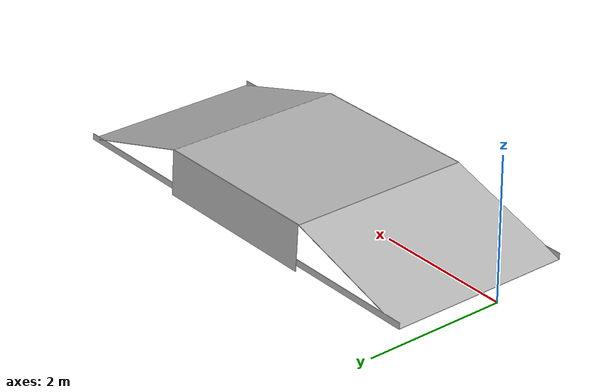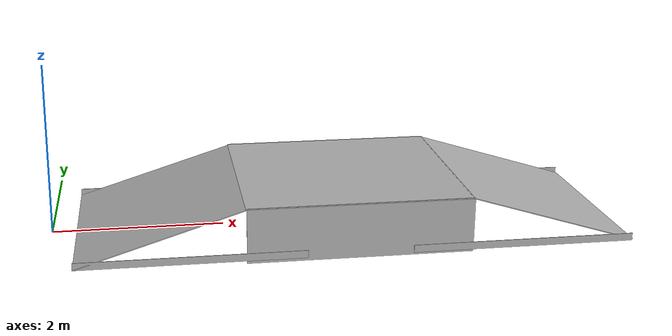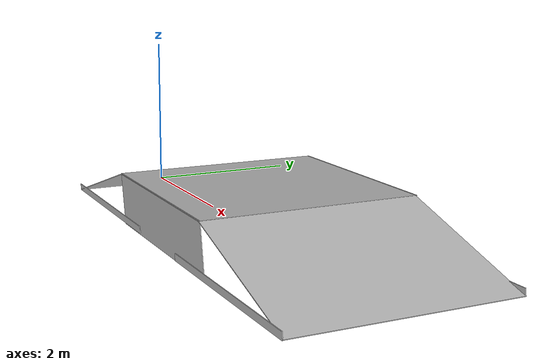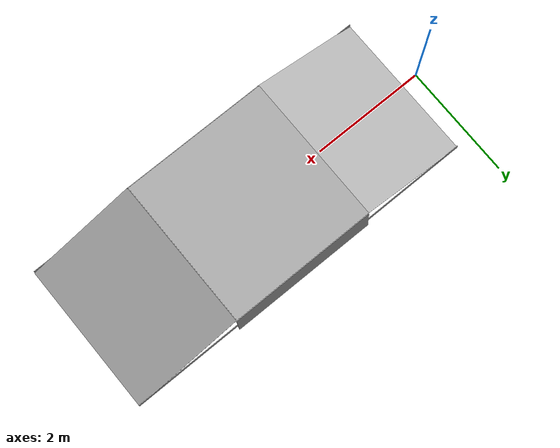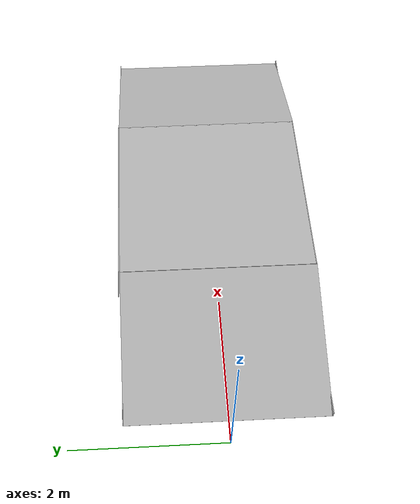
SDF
<?xml version='1.0'?>
<sdf version='1.7'>
  <model name='test1'>
    <link name='slope_up'>
      <pose>1.23518 0.004535 0.301113 0 -0.3 0</pose>
      <self_collide>0</self_collide>
      <kinematic>0</kinematic>
      <gravity>1</gravity>
      <enable_wind>0</enable_wind>
      <inertial>
        <inertia>
          <ixx>0</ixx>
          <ixy>0</ixy>
          <ixz>0</ixz>
          <iyy>0</iyy>
          <iyz>0</iyz>
          <izz>0</izz>
        </inertia>
        <mass>0</mass>
        <pose>0 0 0 0 -0 0</pose>
      </inertial>
      <visual name='visual'>
        <geometry>
          <box>
            <size>2 2.6318 0.01</size>
          </box>
        </geometry>
        <material>
          <shader type='pixel'/>
        </material>
        <pose>0 0 0 0 -0 0</pose>
        <transparency>0</transparency>
        <cast_shadows>1</cast_shadows>
      </visual>
      <collision name='collision'>
        <laser_retro>0</laser_retro>
        <max_contacts>10</max_contacts>
        <pose>0 0 0 0 -0 0</pose>
        <geometry>
          <box>
            <size>2 2.6318 0.01</size>
          </box>
        </geometry>
        <surface>
          <friction>
            <ode>
              <mu>1</mu>
              <mu2>1</mu2>
              <fdir1>0 0 0</fdir1>
              <slip1>0</slip1>
              <slip2>0</slip2>
            </ode>
            <torsional>
              <coefficient>1</coefficient>
              <patch_radius>0</patch_radius>
              <surface_radius>0</surface_radius>
              <use_patch_radius>1</use_patch_radius>
              <ode>
                <slip>0</slip>
              </ode>
            </torsional>
          </friction>
          <bounce>
            <restitution_coefficient>0</restitution_coefficient>
            <threshold>1e+06</threshold>
          </bounce>
          <contact>
            <collide_without_contact>0</collide_without_contact>
            <collide_without_contact_bitmask>1</collide_without_contact_bitmask>
            <collide_bitmask>1</collide_bitmask>
            <ode>
              <soft_cfm>0</soft_cfm>
              <soft_erp>0.2</soft_erp>
              <kp>1e+13</kp>
              <kd>1</kd>
              <max_vel>0.01</max_vel>
              <min_depth>0</min_depth>
            </ode>
            <bullet>
              <split_impulse>1</split_impulse>
              <split_impulse_penetration_threshold>-0.01</split_impulse_penetration_threshold>
              <soft_cfm>0</soft_cfm>
              <soft_erp>0.2</soft_erp>
              <kp>1e+13</kp>
              <kd>1</kd>
            </bullet>
          </contact>
        </surface>
      </collision>
    </link>
    <link name='slope_down'>
      <pose>5.69212 0.005402 0.304187 0 0.3 0</pose>
      <self_collide>0</self_collide>
      <kinematic>0</kinematic>
      <gravity>1</gravity>
      <enable_wind>0</enable_wind>
      <inertial>
        <inertia>
          <ixx>0</ixx>
          <ixy>0</ixy>
          <ixz>0</ixz>
          <iyy>0</iyy>
          <iyz>0</iyz>
          <izz>0</izz>
        </inertia>
        <mass>0</mass>
        <pose>0 0 0 0 -0 0</pose>
      </inertial>
      <visual name='visual'>
        <geometry>
          <box>
            <size>2 2.63129 0.01</size>
          </box>
        </geometry>
        <material>
          <shader type='pixel'/>
        </material>
        <pose>0 0 0 0 -0 0</pose>
        <transparency>0</transparency>
        <cast_shadows>1</cast_shadows>
      </visual>
      <collision name='collision'>
        <laser_retro>0</laser_retro>
        <max_contacts>10</max_contacts>
        <pose>0 0 0 0 -0 0</pose>
        <geometry>
          <box>
            <size>2 2.63129 0.01</size>
          </box>
        </geometry>
        <surface>
          <friction>
            <ode>
              <mu>1</mu>
              <mu2>1</mu2>
              <fdir1>0 0 0</fdir1>
              <slip1>0</slip1>
              <slip2>0</slip2>
            </ode>
            <torsional>
              <coefficient>1</coefficient>
              <patch_radius>0</patch_radius>
              <surface_radius>0</surface_radius>
              <use_patch_radius>1</use_patch_radius>
              <ode>
                <slip>0</slip>
              </ode>
            </torsional>
          </friction>
          <bounce>
            <restitution_coefficient>0</restitution_coefficient>
            <threshold>1e+06</threshold>
          </bounce>
          <contact>
            <collide_without_contact>0</collide_without_contact>
            <collide_without_contact_bitmask>1</collide_without_contact_bitmask>
            <collide_bitmask>1</collide_bitmask>
            <ode>
              <soft_cfm>0</soft_cfm>
              <soft_erp>0.2</soft_erp>
              <kp>1e+13</kp>
              <kd>1</kd>
              <max_vel>0.01</max_vel>
              <min_depth>0</min_depth>
            </ode>
            <bullet>
              <split_impulse>1</split_impulse>
              <split_impulse_penetration_threshold>-0.01</split_impulse_penetration_threshold>
              <soft_cfm>0</soft_cfm>
              <soft_erp>0.2</soft_erp>
              <kp>1e+13</kp>
              <kd>1</kd>
            </bullet>
          </contact>
        </surface>
      </collision>
    </link>
    <link name='slope_zero'>
      <pose>3.45792 0.006188 0.598964 0 -0 0</pose>
      <self_collide>0</self_collide>
      <kinematic>0</kinematic>
      <gravity>1</gravity>
      <enable_wind>0</enable_wind>
      <inertial>
        <inertia>
          <ixx>0</ixx>
          <ixy>0</ixy>
          <ixz>0</ixz>
          <iyy>0</iyy>
          <iyz>0</iyz>
          <izz>0</izz>
        </inertia>
        <mass>0</mass>
        <pose>0 0 0 0 -0 0</pose>
      </inertial>
      <visual name='visual'>
        <geometry>
          <box>
            <size>2.57788 2.6263 0.01</size>
          </box>
        </geometry>
        <material>
          <shader type='pixel'/>
        </material>
        <pose>0 0 0 0 -0 0</pose>
        <transparency>0</transparency>
        <cast_shadows>1</cast_shadows>
      </visual>
      <collision name='collision'>
        <laser_retro>0</laser_retro>
        <max_contacts>10</max_contacts>
        <pose>0 0 0 0 -0 0</pose>
        <geometry>
          <box>
            <size>2.57788 2.6263 0.01</size>
          </box>
        </geometry>
        <surface>
          <friction>
            <ode>
              <mu>1</mu>
              <mu2>1</mu2>
              <fdir1>0 0 0</fdir1>
              <slip1>0</slip1>
              <slip2>0</slip2>
            </ode>
            <torsional>
              <coefficient>1</coefficient>
              <patch_radius>0</patch_radius>
              <surface_radius>0</surface_radius>
              <use_patch_radius>1</use_patch_radius>
              <ode>
                <slip>0</slip>
              </ode>
            </torsional>
          </friction>
          <bounce>
            <restitution_coefficient>0</restitution_coefficient>
            <threshold>1e+06</threshold>
          </bounce>
          <contact>
            <collide_without_contact>0</collide_without_contact>
            <collide_without_contact_bitmask>1</collide_without_contact_bitmask>
            <collide_bitmask>1</collide_bitmask>
            <ode>
              <soft_cfm>0</soft_cfm>
              <soft_erp>0.2</soft_erp>
              <kp>1e+13</kp>
              <kd>1</kd>
              <max_vel>0.01</max_vel>
              <min_depth>0</min_depth>
            </ode>
            <bullet>
              <split_impulse>1</split_impulse>
              <split_impulse_penetration_threshold>-0.01</split_impulse_penetration_threshold>
              <soft_cfm>0</soft_cfm>
              <soft_erp>0.2</soft_erp>
              <kp>1e+13</kp>
              <kd>1</kd>
            </bullet>
          </contact>
        </surface>
      </collision>
    </link>
    <link name='slope_zero_clone'>
      <pose>3.46487 1.35015 0.281576 -1.50451 0 0</pose>
      <self_collide>0</self_collide>
      <kinematic>0</kinematic>
      <gravity>1</gravity>
      <enable_wind>0</enable_wind>
      <inertial>
        <inertia>
          <ixx>0</ixx>
          <ixy>0</ixy>
          <ixz>0</ixz>
          <iyy>0</iyy>
          <iyz>0</iyz>
          <izz>0</izz>
        </inertia>
        <mass>0</mass>
        <pose>0 0 0 0 -0 0</pose>
      </inertial>
      <visual name='visual'>
        <geometry>
          <box>
            <size>2.57788 0.651532 0.01</size>
          </box>
        </geometry>
        <material>
          <shader type='pixel'/>
        </material>
        <pose>0 0 0 0 -0 0</pose>
        <transparency>0</transparency>
        <cast_shadows>1</cast_shadows>
      </visual>
      <collision name='collision'>
        <laser_retro>0</laser_retro>
        <max_contacts>10</max_contacts>
        <pose>0 0 0 0 -0 0</pose>
        <geometry>
          <box>
            <size>2.57788 0.651532 0.01</size>
          </box>
        </geometry>
        <surface>
          <friction>
            <ode>
              <mu>1</mu>
              <mu2>1</mu2>
              <fdir1>0 0 0</fdir1>
              <slip1>0</slip1>
              <slip2>0</slip2>
            </ode>
            <torsional>
              <coefficient>1</coefficient>
              <patch_radius>0</patch_radius>
              <surface_radius>0</surface_radius>
              <use_patch_radius>1</use_patch_radius>
              <ode>
                <slip>0</slip>
              </ode>
            </torsional>
          </friction>
          <bounce>
            <restitution_coefficient>0</restitution_coefficient>
            <threshold>1e+06</threshold>
          </bounce>
          <contact>
            <collide_without_contact>0</collide_without_contact>
            <collide_without_contact_bitmask>1</collide_without_contact_bitmask>
            <collide_bitmask>1</collide_bitmask>
            <ode>
              <soft_cfm>0</soft_cfm>
              <soft_erp>0.2</soft_erp>
              <kp>1e+13</kp>
              <kd>1</kd>
              <max_vel>0.01</max_vel>
              <min_depth>0</min_depth>
            </ode>
            <bullet>
              <split_impulse>1</split_impulse>
              <split_impulse_penetration_threshold>-0.01</split_impulse_penetration_threshold>
              <soft_cfm>0</soft_cfm>
              <soft_erp>0.2</soft_erp>
              <kp>1e+13</kp>
              <kd>1</kd>
            </bullet>
          </contact>
        </surface>
      </collision>
    </link>
    <link name='slope_zero_clone_clone'>
      <pose>3.46816 -1.28045 0.281576 -1.50451 0 0</pose>
      <self_collide>0</self_collide>
      <kinematic>0</kinematic>
      <gravity>1</gravity>
      <enable_wind>0</enable_wind>
      <inertial>
        <inertia>
          <ixx>0</ixx>
          <ixy>0</ixy>
          <ixz>0</ixz>
          <iyy>0</iyy>
          <iyz>0</iyz>
          <izz>0</izz>
        </inertia>
        <mass>0</mass>
        <pose>0 0 0 0 -0 0</pose>
      </inertial>
      <visual name='visual'>
        <geometry>
          <box>
            <size>2.57788 0.651532 0.01</size>
          </box>
        </geometry>
        <material>
          <shader type='pixel'/>
        </material>
        <pose>0 0 0 0 -0 0</pose>
        <transparency>0</transparency>
        <cast_shadows>1</cast_shadows>
      </visual>
      <collision name='collision'>
        <laser_retro>0</laser_retro>
        <max_contacts>10</max_contacts>
        <pose>0 0 0 0 -0 0</pose>
        <geometry>
          <box>
            <size>2.57788 0.651532 0.01</size>
          </box>
        </geometry>
        <surface>
          <friction>
            <ode>
              <mu>1</mu>
              <mu2>1</mu2>
              <fdir1>0 0 0</fdir1>
              <slip1>0</slip1>
              <slip2>0</slip2>
            </ode>
            <torsional>
              <coefficient>1</coefficient>
              <patch_radius>0</patch_radius>
              <surface_radius>0</surface_radius>
              <use_patch_radius>1</use_patch_radius>
              <ode>
                <slip>0</slip>
              </ode>
            </torsional>
          </friction>
          <bounce>
            <restitution_coefficient>0</restitution_coefficient>
            <threshold>1e+06</threshold>
          </bounce>
          <contact>
            <collide_without_contact>0</collide_without_contact>
            <collide_without_contact_bitmask>1</collide_without_contact_bitmask>
            <collide_bitmask>1</collide_bitmask>
            <ode>
              <soft_cfm>0</soft_cfm>
              <soft_erp>0.2</soft_erp>
              <kp>1e+13</kp>
              <kd>1</kd>
              <max_vel>0.01</max_vel>
              <min_depth>0</min_depth>
            </ode>
            <bullet>
              <split_impulse>1</split_impulse>
              <split_impulse_penetration_threshold>-0.01</split_impulse_penetration_threshold>
              <soft_cfm>0</soft_cfm>
              <soft_erp>0.2</soft_erp>
              <kp>1e+13</kp>
              <kd>1</kd>
            </bullet>
          </contact>
        </surface>
      </collision>
    </link>
    <link name='slope_zero_clone_clone_clone'>
      <pose>1.56942 -1.30534 0.047319 -1.50451 0 0</pose>
      <self_collide>0</self_collide>
      <kinematic>0</kinematic>
      <gravity>1</gravity>
      <enable_wind>0</enable_wind>
      <inertial>
        <inertia>
          <ixx>0</ixx>
          <ixy>0</ixy>
          <ixz>0</ixz>
          <iyy>0</iyy>
          <iyz>0</iyz>
          <izz>0</izz>
        </inertia>
        <mass>0</mass>
        <pose>0 0 0 0 -0 0</pose>
      </inertial>
      <visual name='visual'>
        <geometry>
          <box>
            <size>2.57788 0.088007 0.01</size>
          </box>
        </geometry>
        <material>
          <shader type='pixel'/>
        </material>
        <pose>0 0 0 0 -0 0</pose>
        <transparency>0</transparency>
        <cast_shadows>1</cast_shadows>
      </visual>
      <collision name='collision'>
        <laser_retro>0</laser_retro>
        <max_contacts>10</max_contacts>
        <pose>0 0 0 0 -0 0</pose>
        <geometry>
          <box>
            <size>2.57788 0.088007 0.01</size>
          </box>
        </geometry>
        <surface>
          <friction>
            <ode>
              <mu>1</mu>
              <mu2>1</mu2>
              <fdir1>0 0 0</fdir1>
              <slip1>0</slip1>
              <slip2>0</slip2>
            </ode>
            <torsional>
              <coefficient>1</coefficient>
              <patch_radius>0</patch_radius>
              <surface_radius>0</surface_radius>
              <use_patch_radius>1</use_patch_radius>
              <ode>
                <slip>0</slip>
              </ode>
            </torsional>
          </friction>
          <bounce>
            <restitution_coefficient>0</restitution_coefficient>
            <threshold>1e+06</threshold>
          </bounce>
          <contact>
            <collide_without_contact>0</collide_without_contact>
            <collide_without_contact_bitmask>1</collide_without_contact_bitmask>
            <collide_bitmask>1</collide_bitmask>
            <ode>
              <soft_cfm>0</soft_cfm>
              <soft_erp>0.2</soft_erp>
              <kp>1e+13</kp>
              <kd>1</kd>
              <max_vel>0.01</max_vel>
              <min_depth>0</min_depth>
            </ode>
            <bullet>
              <split_impulse>1</split_impulse>
              <split_impulse_penetration_threshold>-0.01</split_impulse_penetration_threshold>
              <soft_cfm>0</soft_cfm>
              <soft_erp>0.2</soft_erp>
              <kp>1e+13</kp>
              <kd>1</kd>
            </bullet>
          </contact>
        </surface>
      </collision>
    </link>
    <link name='slope_zero_clone_clone_clone_clone'>
      <pose>1.56969 1.31882 0.047319 -1.50451 0 0</pose>
      <self_collide>0</self_collide>
      <kinematic>0</kinematic>
      <gravity>1</gravity>
      <enable_wind>0</enable_wind>
      <inertial>
        <inertia>
          <ixx>0</ixx>
          <ixy>0</ixy>
          <ixz>0</ixz>
          <iyy>0</iyy>
          <iyz>0</iyz>
          <izz>0</izz>
        </inertia>
        <mass>0</mass>
        <pose>0 0 0 0 -0 0</pose>
      </inertial>
      <visual name='visual'>
        <geometry>
          <box>
            <size>2.57788 0.088007 0.01</size>
          </box>
        </geometry>
        <material>
          <shader type='pixel'/>
        </material>
        <pose>0 0 0 0 -0 0</pose>
        <transparency>0</transparency>
        <cast_shadows>1</cast_shadows>
      </visual>
      <collision name='collision'>
        <laser_retro>0</laser_retro>
        <max_contacts>10</max_contacts>
        <pose>0 0 0 0 -0 0</pose>
        <geometry>
          <box>
            <size>2.57788 0.088007 0.01</size>
          </box>
        </geometry>
        <surface>
          <friction>
            <ode>
              <mu>1</mu>
              <mu2>1</mu2>
              <fdir1>0 0 0</fdir1>
              <slip1>0</slip1>
              <slip2>0</slip2>
            </ode>
            <torsional>
              <coefficient>1</coefficient>
              <patch_radius>0</patch_radius>
              <surface_radius>0</surface_radius>
              <use_patch_radius>1</use_patch_radius>
              <ode>
                <slip>0</slip>
              </ode>
            </torsional>
          </friction>
          <bounce>
            <restitution_coefficient>0</restitution_coefficient>
            <threshold>1e+06</threshold>
          </bounce>
          <contact>
            <collide_without_contact>0</collide_without_contact>
            <collide_without_contact_bitmask>1</collide_without_contact_bitmask>
            <collide_bitmask>1</collide_bitmask>
            <ode>
              <soft_cfm>0</soft_cfm>
              <soft_erp>0.2</soft_erp>
              <kp>1e+13</kp>
              <kd>1</kd>
              <max_vel>0.01</max_vel>
              <min_depth>0</min_depth>
            </ode>
            <bullet>
              <split_impulse>1</split_impulse>
              <split_impulse_penetration_threshold>-0.01</split_impulse_penetration_threshold>
              <soft_cfm>0</soft_cfm>
              <soft_erp>0.2</soft_erp>
              <kp>1e+13</kp>
              <kd>1</kd>
            </bullet>
          </contact>
        </surface>
      </collision>
    </link>
    <link name='slope_zero_clone_clone_clone_clone_clone'>
      <pose>5.34914 1.31656 0.047319 -1.50451 0 0</pose>
      <self_collide>0</self_collide>
      <kinematic>0</kinematic>
      <gravity>1</gravity>
      <enable_wind>0</enable_wind>
      <inertial>
        <inertia>
          <ixx>0</ixx>
          <ixy>0</ixy>
          <ixz>0</ixz>
          <iyy>0</iyy>
          <iyz>0</iyz>
          <izz>0</izz>
        </inertia>
        <mass>0</mass>
        <pose>0 0 0 0 -0 0</pose>
      </inertial>
      <visual name='visual'>
        <geometry>
          <box>
            <size>2.57788 0.088007 0.01</size>
          </box>
        </geometry>
        <material>
          <shader type='pixel'/>
        </material>
        <pose>0 0 0 0 -0 0</pose>
        <transparency>0</transparency>
        <cast_shadows>1</cast_shadows>
      </visual>
      <collision name='collision'>
        <laser_retro>0</laser_retro>
        <max_contacts>10</max_contacts>
        <pose>0 0 0 0 -0 0</pose>
        <geometry>
          <box>
            <size>2.57788 0.088007 0.01</size>
          </box>
        </geometry>
        <surface>
          <friction>
            <ode>
              <mu>1</mu>
              <mu2>1</mu2>
              <fdir1>0 0 0</fdir1>
              <slip1>0</slip1>
              <slip2>0</slip2>
            </ode>
            <torsional>
              <coefficient>1</coefficient>
              <patch_radius>0</patch_radius>
              <surface_radius>0</surface_radius>
              <use_patch_radius>1</use_patch_radius>
              <ode>
                <slip>0</slip>
              </ode>
            </torsional>
          </friction>
          <bounce>
            <restitution_coefficient>0</restitution_coefficient>
            <threshold>1e+06</threshold>
          </bounce>
          <contact>
            <collide_without_contact>0</collide_without_contact>
            <collide_without_contact_bitmask>1</collide_without_contact_bitmask>
            <collide_bitmask>1</collide_bitmask>
            <ode>
              <soft_cfm>0</soft_cfm>
              <soft_erp>0.2</soft_erp>
              <kp>1e+13</kp>
              <kd>1</kd>
              <max_vel>0.01</max_vel>
              <min_depth>0</min_depth>
            </ode>
            <bullet>
              <split_impulse>1</split_impulse>
              <split_impulse_penetration_threshold>-0.01</split_impulse_penetration_threshold>
              <soft_cfm>0</soft_cfm>
              <soft_erp>0.2</soft_erp>
              <kp>1e+13</kp>
              <kd>1</kd>
            </bullet>
          </contact>
        </surface>
      </collision>
    </link>
    <link name='slope_zero_clone_clone_clone_clone_clone_0'>
      <pose>5.34735 -1.31238 0.0414 -1.50451 0 0</pose>
      <self_collide>0</self_collide>
      <kinematic>0</kinematic>
      <gravity>1</gravity>
      <enable_wind>0</enable_wind>
      <inertial>
        <inertia>
          <ixx>0</ixx>
          <ixy>0</ixy>
          <ixz>0</ixz>
          <iyy>0</iyy>
          <iyz>0</iyz>
          <izz>0</izz>
        </inertia>
        <mass>0</mass>
        <pose>0 0 0 0 -0 0</pose>
      </inertial>
      <visual name='visual'>
        <geometry>
          <box>
            <size>2.57788 0.088007 0.01</size>
          </box>
        </geometry>
        <material>
          <shader type='pixel'/>
        </material>
        <pose>0 0 0 0 -0 0</pose>
        <transparency>0</transparency>
        <cast_shadows>1</cast_shadows>
      </visual>
      <collision name='collision'>
        <laser_retro>0</laser_retro>
        <max_contacts>10</max_contacts>
        <pose>0 0 0 0 -0 0</pose>
        <geometry>
          <box>
            <size>2.57788 0.088007 0.01</size>
          </box>
        </geometry>
        <surface>
          <friction>
            <ode>
              <mu>1</mu>
              <mu2>1</mu2>
              <fdir1>0 0 0</fdir1>
              <slip1>0</slip1>
              <slip2>0</slip2>
            </ode>
            <torsional>
              <coefficient>1</coefficient>
              <patch_radius>0</patch_radius>
              <surface_radius>0</surface_radius>
              <use_patch_radius>1</use_patch_radius>
              <ode>
                <slip>0</slip>
              </ode>
            </torsional>
          </friction>
          <bounce>
            <restitution_coefficient>0</restitution_coefficient>
            <threshold>1e+06</threshold>
          </bounce>
          <contact>
            <collide_without_contact>0</collide_without_contact>
            <collide_without_contact_bitmask>1</collide_without_contact_bitmask>
            <collide_bitmask>1</collide_bitmask>
            <ode>
              <soft_cfm>0</soft_cfm>
              <soft_erp>0.2</soft_erp>
              <kp>1e+13</kp>
              <kd>1</kd>
              <max_vel>0.01</max_vel>
              <min_depth>0</min_depth>
            </ode>
            <bullet>
              <split_impulse>1</split_impulse>
              <split_impulse_penetration_threshold>-0.01</split_impulse_penetration_threshold>
              <soft_cfm>0</soft_cfm>
              <soft_erp>0.2</soft_erp>
              <kp>1e+13</kp>
              <kd>1</kd>
            </bullet>
          </contact>
        </surface>
      </collision>
    </link>
    <static>1</static>
    <allow_auto_disable>1</allow_auto_disable>
  </model>
</sdf>
